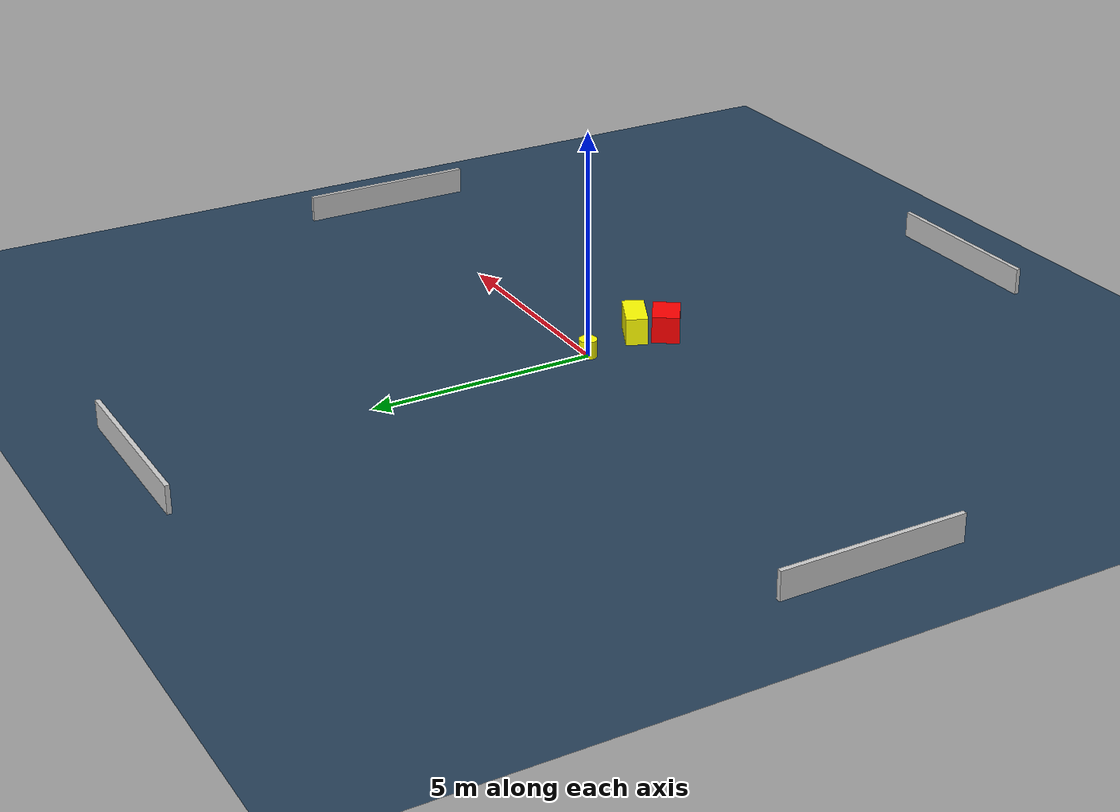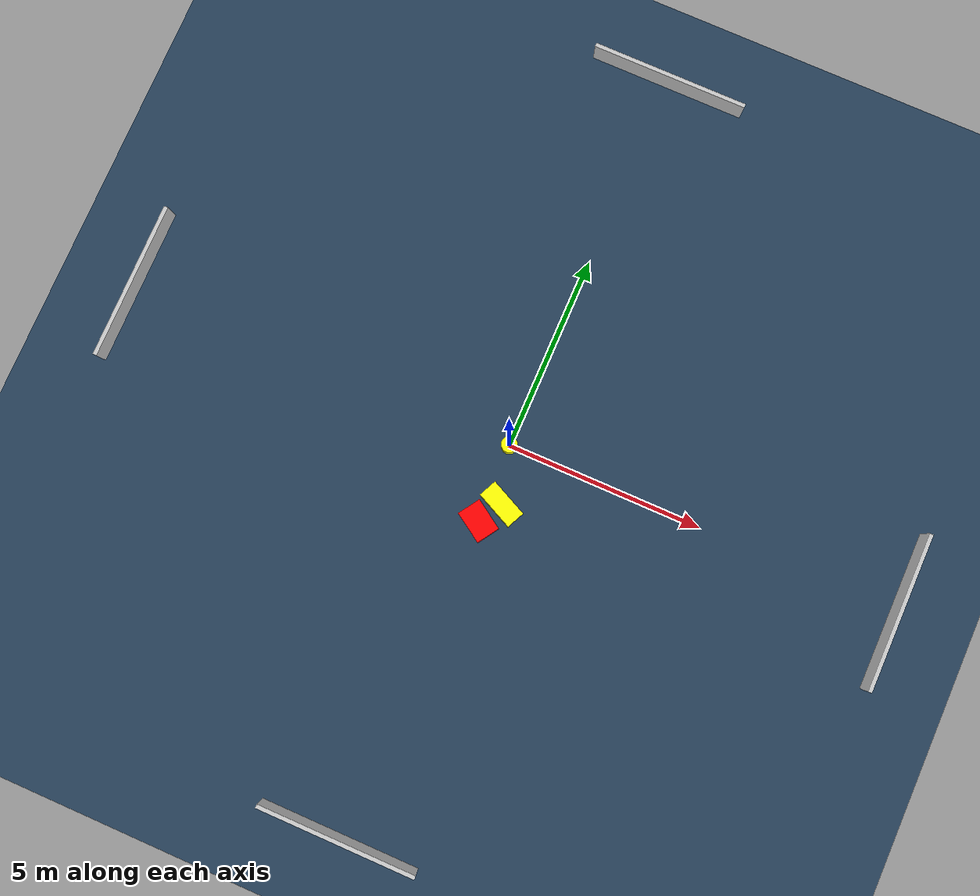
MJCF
<?xml version="1.0" ?>
<mujoco model="generated_environment">
  <option timestep="0.01" integrator="RK4" cone="elliptic"/>
  <default>
    <geom density="1"/>
  </default>
  <asset>
    <texture builtin="gradient" height="3072" name="skybox" rgb1="0.3 0.5 0.7" rgb2="0 0 0" type="skybox" width="512"/>
    <texture builtin="checker" height="300" name="groundplane" rgb1="0.2 0.3 0.4" rgb2="0.1 0.2 0.3" type="2d" width="300"/>
    <material name="groundplane" reflectance="0.2" texrepeat="5 5" texture="groundplane"/>
  </asset>
  <worldbody>
    <light dir="0 0 -1" directional="true" pos="0 0 1.5"/>
    <geom condim="3" friction="0.5 0.005 0.001" material="groundplane" name="floor" pos="0 0 0" size="0 0 0.05" type="plane"/>
    <body name="walls">
      <geom name="wall_1" condim="4" pos="-10.0 0.0 0.3" rgba="0.800000011920929 0.800000011920929 0.800000011920929 1.0" size="0.05 2.0 0.3" type="box"/>
      <geom name="wall_2" condim="4" pos="10.0 0.0 0.3" rgba="0.800000011920929 0.800000011920929 0.800000011920929 1.0" size="0.05 2.0 0.3" type="box"/>
      <geom name="wall_3" condim="4" pos="0.0 -10.0 0.3" rgba="0.800000011920929 0.800000011920929 0.800000011920929 1.0" size="2.0 0.05 0.3" type="box"/>
      <geom name="wall_4" condim="4" pos="0.0 10.0 0.3" rgba="0.800000011920929 0.800000011920929 0.800000011920929 1.0" size="2.0 0.05 0.3" type="box"/>
    </body>
    <body name="robot">
      <joint name="joint_x" type="slide" pos="0 0 0" axis="1 0 0"/>
      <joint name="joint_y" type="slide" pos="0 0 0" axis="0 1 0"/>
      <geom name="robot" type="cylinder" pos="0.0 0.0 0.2" size="0.2 0.2 0.0" mass="5.0" friction="1.0 0.005 0.0001" condim="4" rgba="1.0 1.0 0.0 1.0"/>
    </body>
    <body name="obstacle_1_movable">
      <geom name="obstacle_1_movable" condim="4" pos="0.4058038746085233 -1.3956953037205828 0.3" euler="0 0 64.67621868033916" friction="0.0 0.005 0.001" rgba="1.0 1.0 0.0 1.0" size="0.2386564211204964 0.5055231556666384 0.3" type="box" mass="0.1"/>
      <joint type="free"/>
    </body>
    <body name="obstacle_2_static">
      <geom name="obstacle_2_static" condim="4" pos="0.06289842057030805 -1.9769558426668028 0.3" euler="0 0 56.985096304845115" friction="0.0 0.005 0.001" rgba="1.0 0.0 0.0 1.0" size="0.3007962967988998 0.41480411206687495 0.3" type="box"/>
    </body>
  </worldbody>
  <actuator>
    <motor name="actuator_x" joint="joint_x" gear="1" ctrlrange="-1 1"/>
    <motor name="actuator_y" joint="joint_y" gear="1" ctrlrange="-1 1"/>
  </actuator>
</mujoco>
